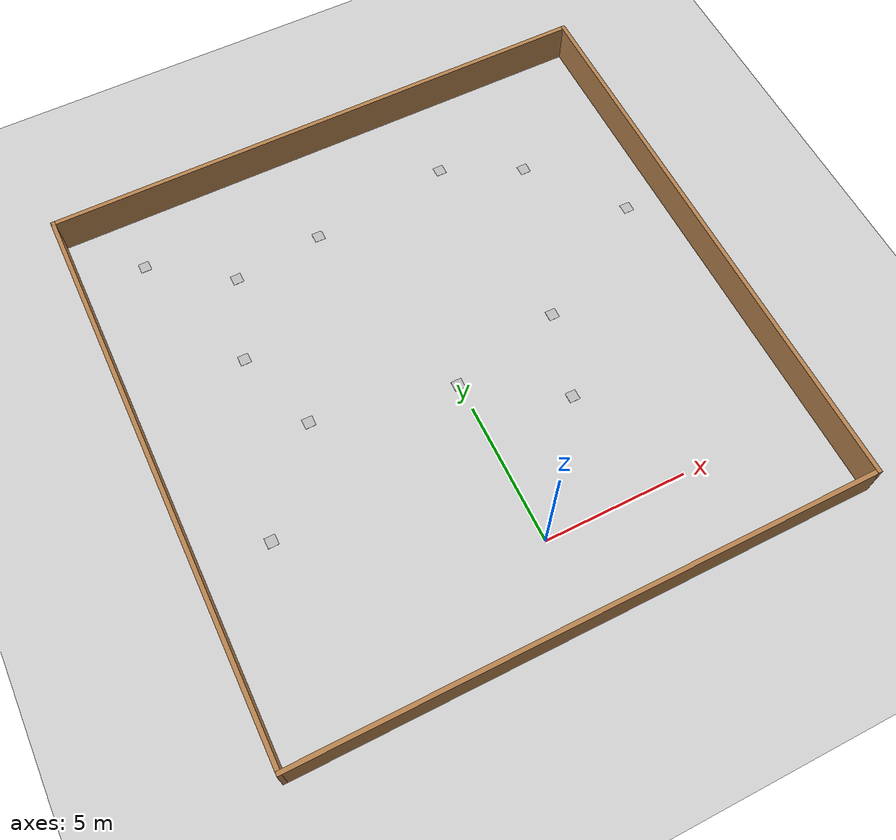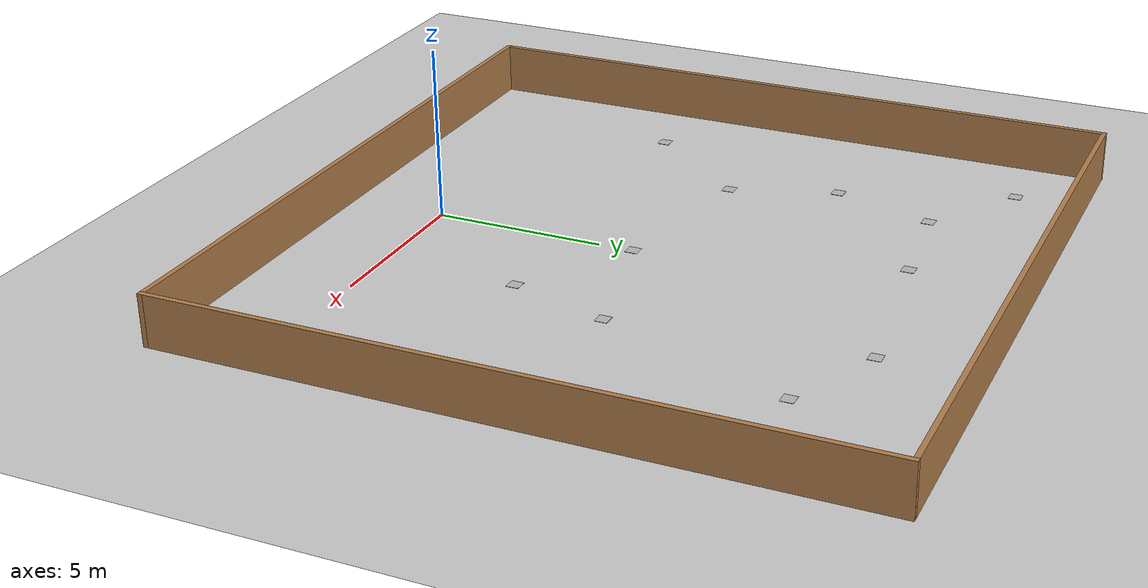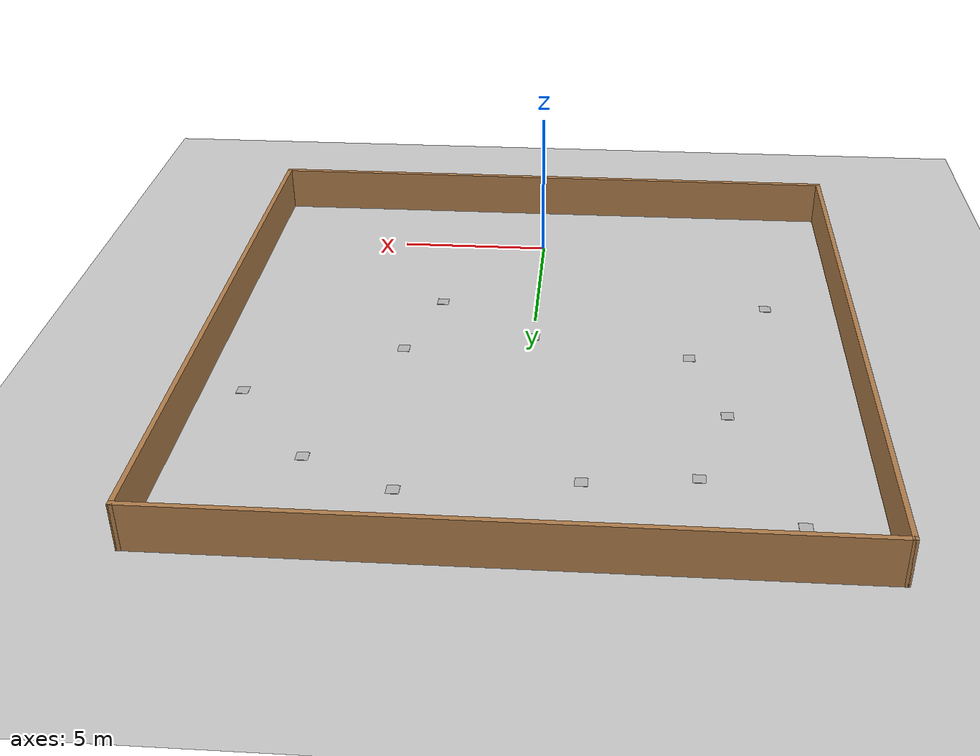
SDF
<sdf version="1.7">
 <world name="default">
  <light name="sun" type="directional">
   <pose>0 0 10 0 -0 0</pose>
   <diffuse>0.8 0.8 0.8 1</diffuse>
   <specular>0.2 0.2 0.2 1</specular>
   <attenuation>
    <range>1000</range>
    <constant>0.9</constant>
    <linear>0.01</linear>
    <quadratic>0.001</quadratic>
   </attenuation>
   <direction>-0.5 0.1 -0.9</direction>
   <spot><inner_angle>0</inner_angle><outer_angle>0</outer_angle><falloff>0</falloff></spot>
  </light>
  <model name="ground_plane">
   <static>1</static>
   <link name="link">
    <collision name="collision">
     <geometry><plane><normal>0 0 1</normal><size>100 100</size></plane></geometry>
     <surface>
      <contact><collide_bitmask>65535</collide_bitmask></contact>
      <friction><ode><mu>100</mu><mu2>50</mu2></ode></friction>
     </surface>
    </collision>
    <visual name="visual">
     <cast_shadows>0</cast_shadows>
     <geometry><plane><normal>0 0 1</normal><size>100 100</size></plane></geometry>
     <material>
      <script><uri>file://media/materials/scripts/gazebo.material</uri><name>Gazebo/Grey</name></script>
     </material>
    </visual>
   </link>
  </model>
  <gravity>0 0 -9.8</gravity>
  <magnetic_field>6e-06 2.3e-05 -4.2e-05</magnetic_field>
  <atmosphere type="adiabatic"/>
  <physics type="ode">
   <max_step_size>0.001</max_step_size>
   <real_time_factor>1</real_time_factor>
   <real_time_update_rate>1000</real_time_update_rate>
  </physics>
  <scene><ambient>0.4 0.4 0.4 1</ambient><background>0.7 0.7 0.7 1</background><shadows>1</shadows></scene>
  <spherical_coordinates>
   <surface_model>EARTH_WGS84</surface_model>
   <latitude_deg>0</latitude_deg>
   <longitude_deg>0</longitude_deg>
   <elevation>0</elevation>
   <heading_deg>0</heading_deg>
  </spherical_coordinates>
  <model name="Bound_Wall">
   <pose>-0.075 7 0 0 -0 0</pose>
   <link name="Wall_0">
    <collision name="Wall_0_Collision">
     <geometry><box><size>20 0.15 1.5</size></box></geometry>
     <pose>0 0 0.75 0 -0 0</pose>
    </collision>
    <visual name="Wall_0_Visual">
     <pose>0 0 0.75 0 -0 0</pose>
     <geometry><box><size>20 0.15 1.5</size></box></geometry>
     <material>
      <script><uri>file://media/materials/scripts/gazebo.material</uri><name>Gazebo/Wood</name></script>
      <ambient>1 1 1 1</ambient>
     </material>
     <meta><layer>0</layer></meta>
    </visual>
    <pose>-0 -9.9405 0 0 -0 0</pose>
   </link>
   <link name="Wall_2">
    <collision name="Wall_2_Collision">
     <geometry><box><size>20.031 0.15 1.5</size></box></geometry>
     <pose>0 0 0.75 0 -0 0</pose>
    </collision>
    <visual name="Wall_2_Visual">
     <pose>0 0 0.75 0 -0 0</pose>
     <geometry><box><size>20.031 0.15 1.5</size></box></geometry>
     <material>
      <script><uri>file://media/materials/scripts/gazebo.material</uri><name>Gazebo/Wood</name></script>
      <ambient>1 1 1 1</ambient>
     </material>
     <meta><layer>0</layer></meta>
    </visual>
    <pose>-9.925 -0 0 0 -0 1.5708</pose>
   </link>
   <link name="Wall_4">
    <collision name="Wall_4_Collision">
     <geometry><box><size>20 0.15 1.5</size></box></geometry>
     <pose>0 0 0.75 0 -0 0</pose>
    </collision>
    <visual name="Wall_4_Visual">
     <pose>0 0 0.75 0 -0 0</pose>
     <geometry><box><size>20 0.15 1.5</size></box></geometry>
     <material>
      <script><uri>file://media/materials/scripts/gazebo.material</uri><name>Gazebo/Wood</name></script>
      <ambient>1 1 1 1</ambient>
     </material>
     <meta><layer>0</layer></meta>
    </visual>
    <pose>-0 9.9405 0 0 -0 0</pose>
   </link>
   <link name="Wall_6">
    <collision name="Wall_6_Collision">
     <geometry><box><size>20.031 0.15 1.5</size></box></geometry>
     <pose>0 0 0.75 0 -0 0</pose>
    </collision>
    <visual name="Wall_6_Visual">
     <pose>0 0 0.75 0 -0 0</pose>
     <geometry><box><size>20.031 0.15 1.5</size></box></geometry>
     <material>
      <script><uri>file://media/materials/scripts/gazebo.material</uri><name>Gazebo/Wood</name></script>
      <ambient>1 1 1 1</ambient>
     </material>
     <meta><layer>0</layer></meta>
    </visual>
    <pose>9.925 -0 0 0 -0 -1.5708</pose>
   </link>
   <static>1</static>
  </model>
  <model name="Tag36h11_0_0">
   <static>1</static>
   <link name="link">
    <collision name="collision"><geometry><box><size>0.3702 0.3702 0.01</size></box></geometry></collision>
    <visual name="visual">
     <cast_shadows>0</cast_shadows>
     <geometry><box><size>0.3702 0.3702 0.01</size></box></geometry>
     <material>
      <script>
       <uri>model://Tag36h11_0/materials/scripts</uri>
       <uri>model://Tag36h11_0/materials/textures</uri>
       <name>Tag36h11_0</name>
      </script>
     </material>
    </visual>
   </link>
   <pose>-6.00743 10.0257 0 0 -0 0</pose>
  </model>
  <model name="Tag36h11_0_2">
   <static>1</static>
   <link name="link">
    <collision name="collision"><geometry><box><size>0.3702 0.3702 0.01</size></box></geometry></collision>
    <visual name="visual">
     <cast_shadows>0</cast_shadows>
     <geometry><box><size>0.3702 0.3702 0.01</size></box></geometry>
     <material>
      <script>
       <uri>model://Tag36h11_0/materials/scripts</uri>
       <uri>model://Tag36h11_0/materials/textures</uri>
       <name>Tag36h11_0</name>
      </script>
     </material>
    </visual>
   </link>
   <pose>4.04048 6.97862 0 0 -0 0</pose>
  </model>
  <model name="Tag36h11_0_4">
   <static>1</static>
   <link name="link">
    <collision name="collision"><geometry><box><size>0.3702 0.3702 0.01</size></box></geometry></collision>
    <visual name="visual">
     <cast_shadows>0</cast_shadows>
     <geometry><box><size>0.3702 0.3702 0.01</size></box></geometry>
     <material>
      <script>
       <uri>model://Tag36h11_0/materials/scripts</uri>
       <uri>model://Tag36h11_0/materials/textures</uri>
       <name>Tag36h11_0</name>
      </script>
     </material>
    </visual>
   </link>
   <pose>-1.83305 13.4172 0 0 -0 0</pose>
  </model>
  <model name="Tag36h11_0_5">
   <static>1</static>
   <link name="link">
    <collision name="collision"><geometry><box><size>0.3702 0.3702 0.01</size></box></geometry></collision>
    <visual name="visual">
     <cast_shadows>0</cast_shadows>
     <geometry><box><size>0.3702 0.3702 0.01</size></box></geometry>
     <material>
      <script>
       <uri>model://Tag36h11_0/materials/scripts</uri>
       <uri>model://Tag36h11_0/materials/textures</uri>
       <name>Tag36h11_0</name>
      </script>
     </material>
    </visual>
   </link>
   <pose>6.03511 12.7747 0 0 -0 0</pose>
  </model>
  <model name="Tag36h11_0_6">
   <static>1</static>
   <link name="link">
    <collision name="collision"><geometry><box><size>0.3702 0.3702 0.01</size></box></geometry></collision>
    <visual name="visual">
     <cast_shadows>0</cast_shadows>
     <geometry><box><size>0.3702 0.3702 0.01</size></box></geometry>
     <material>
      <script>
       <uri>model://Tag36h11_0/materials/scripts</uri>
       <uri>model://Tag36h11_0/materials/textures</uri>
       <name>Tag36h11_0</name>
      </script>
     </material>
    </visual>
   </link>
   <pose>-7.62992 3.7555 0 0 -0 0</pose>
  </model>
  <model name="Tag36h11_0">
   <static>1</static>
   <link name="link">
    <collision name="collision"><geometry><box><size>0.3702 0.3702 0.01</size></box></geometry></collision>
    <visual name="visual">
     <cast_shadows>0</cast_shadows>
     <geometry><box><size>0.3702 0.3702 0.01</size></box></geometry>
     <material>
      <script>
       <uri>model://Tag36h11_0/materials/scripts</uri>
       <uri>model://Tag36h11_0/materials/textures</uri>
       <name>Tag36h11_0</name>
      </script>
     </material>
    </visual>
   </link>
   <pose>-0.024997 6.01974 0 0 -0 0</pose>
  </model>
  <model name="Tag36h11_0_3">
   <static>1</static>
   <link name="link">
    <collision name="collision"><geometry><box><size>0.3702 0.3702 0.01</size></box></geometry></collision>
    <visual name="visual">
     <cast_shadows>0</cast_shadows>
     <geometry><box><size>0.3702 0.3702 0.01</size></box></geometry>
     <material>
      <script>
       <uri>model://Tag36h11_0/materials/scripts</uri>
       <uri>model://Tag36h11_0/materials/textures</uri>
       <name>Tag36h11_0</name>
      </script>
     </material>
    </visual>
   </link>
   <pose>-7.75886 14.9298 0 0 -0 0</pose>
  </model>
  <model name="Tag36h11_1">
   <static>1</static>
   <link name="link">
    <collision name="collision"><geometry><box><size>0.3702 0.3702 0.01</size></box></geometry></collision>
    <visual name="visual">
     <cast_shadows>0</cast_shadows>
     <geometry><box><size>0.3702 0.3702 0.01</size></box></geometry>
     <material>
      <script>
       <uri>model://Tag36h11_1/materials/scripts</uri>
       <uri>model://Tag36h11_1/materials/textures</uri>
       <name>Tag36h11_1</name>
      </script>
     </material>
    </visual>
   </link>
   <pose>-4.99332 6.95437 0 0 -0 0</pose>
  </model>
  <model name="Tag36h11_1_0">
   <static>1</static>
   <link name="link">
    <collision name="collision"><geometry><box><size>0.3702 0.3702 0.01</size></box></geometry></collision>
    <visual name="visual">
     <cast_shadows>0</cast_shadows>
     <geometry><box><size>0.3702 0.3702 0.01</size></box></geometry>
     <material>
      <script>
       <uri>model://Tag36h11_1/materials/scripts</uri>
       <uri>model://Tag36h11_1/materials/textures</uri>
       <name>Tag36h11_1</name>
      </script>
     </material>
    </visual>
   </link>
   <pose>3.262 14.0793 0 0 -0 0</pose>
  </model>
  <model name="Tag36h11_1_1">
   <static>1</static>
   <link name="link">
    <collision name="collision"><geometry><box><size>0.3702 0.3702 0.01</size></box></geometry></collision>
    <visual name="visual">
     <cast_shadows>0</cast_shadows>
     <geometry><box><size>0.3702 0.3702 0.01</size></box></geometry>
     <material>
      <script>
       <uri>model://Tag36h11_1/materials/scripts</uri>
       <uri>model://Tag36h11_1/materials/textures</uri>
       <name>Tag36h11_1</name>
      </script>
     </material>
    </visual>
   </link>
   <pose>-5.06148 13.0553 0 0 -0 0</pose>
  </model>
  <model name="Tag36h11_1_2">
   <static>1</static>
   <link name="link">
    <collision name="collision"><geometry><box><size>0.3702 0.3702 0.01</size></box></geometry></collision>
    <visual name="visual">
     <cast_shadows>0</cast_shadows>
     <geometry><box><size>0.3702 0.3702 0.01</size></box></geometry>
     <material>
      <script>
       <uri>model://Tag36h11_1/materials/scripts</uri>
       <uri>model://Tag36h11_1/materials/textures</uri>
       <name>Tag36h11_1</name>
      </script>
     </material>
    </visual>
   </link>
   <pose>3.15882 3.97669 0 0 -0 0</pose>
  </model>
  <model name="Tag36h11_0_1">
   <static>1</static>
   <link name="link">
    <collision name="collision"><geometry><box><size>0.3702 0.3702 0.01</size></box></geometry></collision>
    <visual name="visual">
     <cast_shadows>0</cast_shadows>
     <geometry><box><size>0.3702 0.3702 0.01</size></box></geometry>
     <material>
      <script>
       <uri>model://Tag36h11_0/materials/scripts</uri>
       <uri>model://Tag36h11_0/materials/textures</uri>
       <name>Tag36h11_0</name>
      </script>
     </material>
    </visual>
   </link>
   <pose>8.54412 9.64343 0 0 -0 0</pose>
  </model>
 </world>
</sdf>
